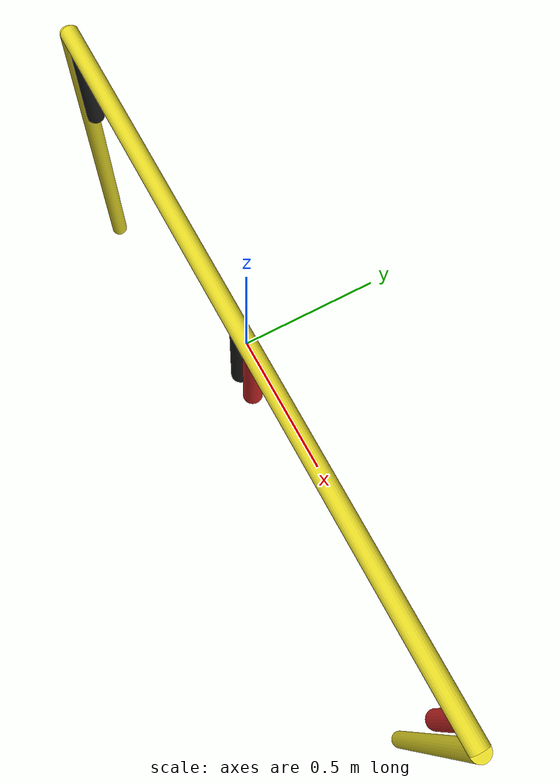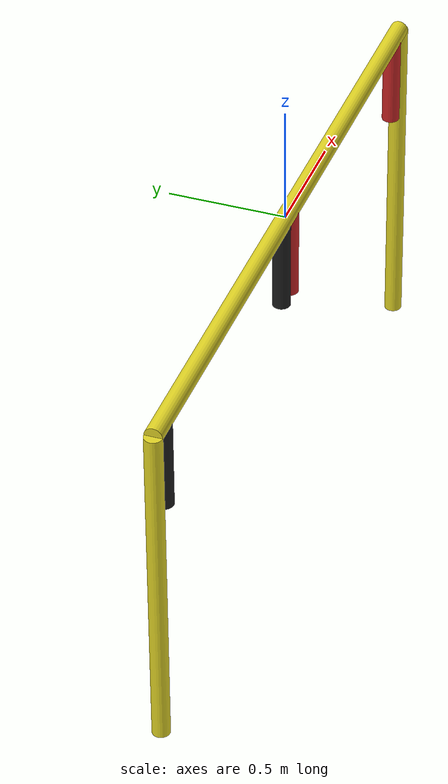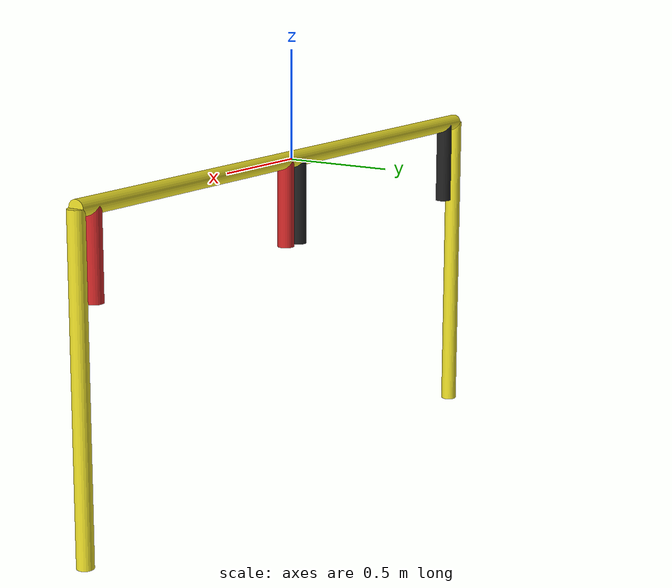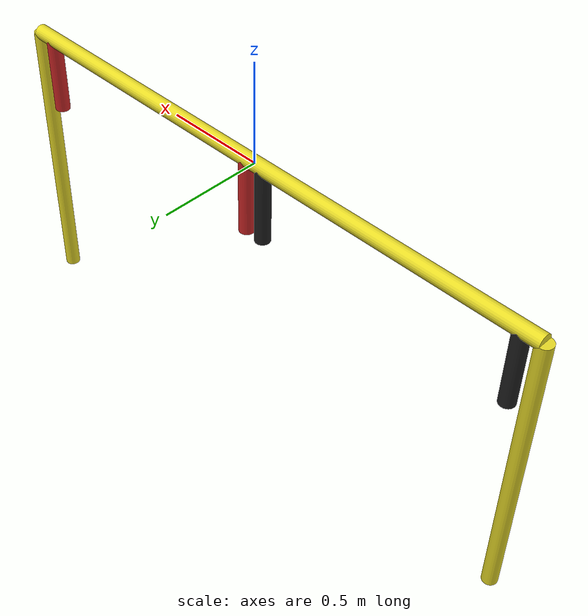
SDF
<?xml version='1.0'?>
<sdf version='1.5'>
<!--
     Written by Kristoffer Rakstad Solberg, Student
     Copyright (c) 2019 Manta AUV, Vortex NTNU.
     All rights reserved.
-->
  <model name='start_gate'>
    <pose> 0 0 0 0 0 0</pose>
    <self_collide> 0 </self_collide>
    <static>1</static>

    <link name='gate_top'>
      <pose> 0 0 0 0 1.5707 0</pose>
      <visual name='gate_top_vis'>
        <geometry>
          <cylinder>
            <radius>0.0381</radius>
            <length>3.0</length>
          </cylinder>
        </geometry>
        <material>
          <script>
            <uri>file://media/materials/scripts/gazebo.material</uri>
            <name>Gazebo/Yellow</name>
          </script>
        </material>
      </visual>
      <collision name='gate_top_collide'>
        <geometry>
          <cylinder>
            <radius>0.0381</radius>
            <length>3.0</length>
          </cylinder>
        </geometry>
      </collision>
    </link>

    <link name='gate_left'>
      <pose>-1.5 0 -0.75 0 0 0</pose>
      <visual name='gate_left_top'>
        <geometry>
          <cylinder>
            <radius>0.0381</radius>
            <length>1.5</length>
          </cylinder>
        </geometry>
        <material>
          <script>
            <uri>file://media/materials/scripts/gazebo.material</uri>
            <name>Gazebo/Yellow</name>
          </script>
        </material>
      </visual>
      <collision name='gate_left_collide'>
        <geometry>
          <cylinder>
            <radius>0.0381</radius>
            <length>1.5</length>
          </cylinder>
        </geometry>
      </collision>
    </link>

    <link name='gate_right'>
      <pose>1.5 0 -0.75 0 0 0</pose>
      <visual name='gate_right_top'>
        <geometry>
          <cylinder>
            <radius>0.0381</radius>
            <length>1.5</length>
          </cylinder>
        </geometry>
        <material>
          <script>
            <uri>file://media/materials/scripts/gazebo.material</uri>
            <name>Gazebo/Yellow</name>
          </script>
        </material>
      </visual>
      <collision name='gate_right_collide'>
        <geometry>
          <cylinder>
            <radius>0.0381</radius>
            <length>1.5</length>
          </cylinder>
        </geometry>
      </collision>
    </link>

    <link name='red_flag_left'>
      <pose>1.4 0 -0.2 0 0 0</pose>
      <visual name='red_flag_left_vis'>
        <geometry>
          <cylinder>
            <radius>0.0381</radius>
            <length>0.4</length>
          </cylinder>
        </geometry>
        <material>
          <script>
            <uri>file://media/materials/scripts/gazebo.material</uri>
            <name>Gazebo/Red</name>
          </script>
        </material>
      </visual>
    </link>

    <link name='red_flag_right'>
      <pose>0.05 0 -0.2 0 0 0</pose>
      <visual name='red_flag_right_vis'>
        <geometry>
          <cylinder>
            <radius>0.0381</radius>
            <length>0.4</length>
          </cylinder>
        </geometry>
        <material>
          <script>
            <uri>file://media/materials/scripts/gazebo.material</uri>
            <name>Gazebo/Red</name>
          </script>
        </material>
      </visual>
    </link>

    <link name='black_flag_right'>
      <pose>-1.4 0 -0.2 0 0 0</pose>
      <visual name='black_flag_right_vis'>
        <geometry>
          <cylinder>
            <radius>0.0381</radius>
            <length>0.4</length>
          </cylinder>
        </geometry>
        <material>
          <script>
            <uri>file://media/materials/scripts/gazebo.material</uri>
            <name>Gazebo/Black</name>
          </script>
        </material>
      </visual>
    </link>

    <link name='black_flag_left'>
      <pose>-0.05 0 -0.2 0 0 0</pose>
      <visual name='black_flag_left_vis'>
        <geometry>
          <cylinder>
            <radius>0.0381</radius>
            <length>0.4</length>
          </cylinder>
        </geometry>
        <material>
          <script>
            <uri>file://media/materials/scripts/gazebo.material</uri>
            <name>Gazebo/Black</name>
          </script>
        </material>
      </visual>
    </link>

  </model>
</sdf>
